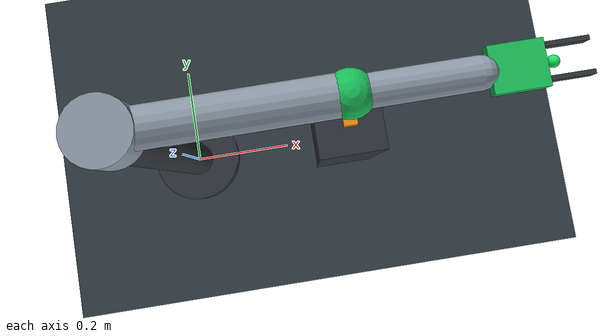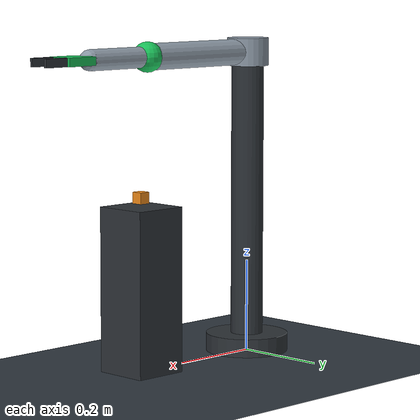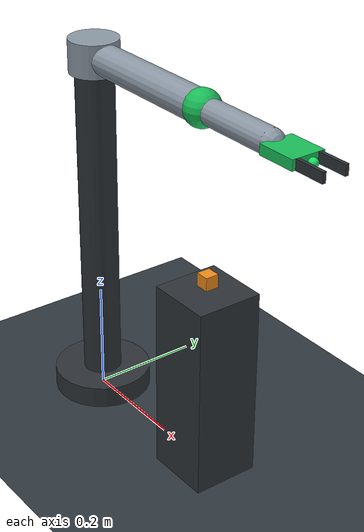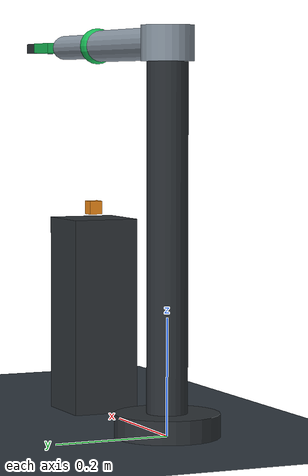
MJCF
<mujoco model="wasabi_mk1">
  <compiler angle="radian" autolimits="true"/>

  <option timestep="0.002" gravity="0 0 -9.81" integrator="implicitfast"
          cone="elliptic" impratio="10"/>

  <visual>
    <headlight ambient="0.3 0.3 0.3" diffuse="0.7 0.7 0.7"/>
    <global azimuth="160" elevation="-20"/>
  </visual>

  <asset>
    <texture type="skybox" builtin="gradient" rgb1="0.25 0.35 0.45" rgb2="0.05 0.07 0.10" width="256" height="256"/>
    <texture name="grid" type="2d" builtin="checker" rgb1="0.15 0.18 0.20" rgb2="0.22 0.26 0.30" width="300" height="300"/>
    <material name="grid" texture="grid" texrepeat="6 6" reflectance="0.1"/>
    <material name="metal" rgba="0.55 0.60 0.65 1" reflectance="0.3"/>
    <material name="accent" rgba="0.10 0.75 0.35 1"/>
    <material name="dark" rgba="0.18 0.20 0.22 1"/>
    <material name="cube" rgba="0.95 0.55 0.10 1"/>
  </asset>

  <worldbody>
    <light pos="1 -1 2.5" dir="-1 1 -2.5" diffuse="0.8 0.8 0.8"/>
    <geom name="floor" type="plane" size="2 2 0.05" material="grid"/>

    <!-- Red sphere = raw IK target. The gripper tip chasing it makes
         tracking precision directly visible. -->
    <body name="target" mocap="true" pos="0.40 0 0.66">
      <geom type="sphere" size="0.012" rgba="1 0.25 0.2 0.8" contype="0" conaffinity="0"/>
    </body>

    <!-- Pickup stand + free cube, placed well inside the reachable workspace. -->
    <geom name="stand" type="box" pos="0.32 0 0.175" size="0.06 0.06 0.175" material="dark"/>
    <body name="cube" pos="0.32 0 0.369">
      <freejoint name="cube_free"/>
      <geom name="cube" type="box" size="0.012 0.012 0.012" material="cube"
            friction="1.0 0.02 0.001" condim="4"/>
    </body>

    <body name="pedestal" pos="0 0 0">
      <geom type="cylinder" size="0.09 0.02" pos="0 0 0.02" material="dark" contype="0" conaffinity="0"/>
      <geom type="cylinder" size="0.035 0.305" pos="0 0 0.345" material="dark" contype="0" conaffinity="0"/>

      <body name="shoulder_yaw" pos="0 0 0.66">
        <joint name="base_yaw" axis="0 0 1" range="-2.094 2.094" damping="5" armature="0.1"/>
        <geom type="cylinder" size="0.045 0.03" material="metal" contype="0" conaffinity="0"/>

        <body name="upper_arm">
          <joint name="shoulder_pitch" axis="0 -1 0" range="-1.658 1.658" damping="5" armature="0.1"/>
          <geom type="capsule" fromto="0 0 0  0.30 0 0" size="0.028" material="metal" contype="0" conaffinity="0"/>

          <body name="forearm" pos="0.30 0 0">
            <joint name="elbow" axis="0 -1 0" range="0 2.618" damping="4" armature="0.08"/>
            <geom type="sphere" size="0.032" material="accent" contype="0" conaffinity="0"/>
            <geom type="capsule" fromto="0 0 0  0.16 0 0" size="0.022" material="metal" contype="0" conaffinity="0"/>

            <body name="wrist" pos="0.16 0 0">
              <joint name="wrist_roll" axis="1 0 0" range="-3.1416 3.1416" damping="1.5" armature="0.03"/>
              <geom type="box" pos="0.045 0 0" size="0.035 0.030 0.009" material="accent" contype="0" conaffinity="0"/>
              <site name="ee" pos="0.09 0 0" size="0.008" rgba="0.1 0.9 0.4 1"/>

              <body name="finger_l" pos="0.08 0.026 0">
                <joint name="finger_l" axis="0 0 -1" range="0 0.7" damping="0.3" armature="0.01"/>
                <geom type="box" pos="0.0275 -0.005 0" size="0.0275 0.003 0.009"
                      material="dark" friction="2.0 0.05 0.002" condim="4"
                      contype="2" conaffinity="1"/>
              </body>
              <body name="finger_r" pos="0.08 -0.026 0">
                <joint name="finger_r" axis="0 0 1" range="0 0.7" damping="0.3" armature="0.01"/>
                <geom type="box" pos="0.0275 0.005 0" size="0.0275 0.003 0.009"
                      material="dark" friction="2.0 0.05 0.002" condim="4"
                      contype="2" conaffinity="1"/>
              </body>
            </body>
          </body>
        </body>
      </body>
    </body>
  </worldbody>

  <actuator>
    <position name="base_yaw"      joint="base_yaw"      kp="300" kv="15"  ctrlrange="-2.094 2.094"/>
    <position name="shoulder_pitch" joint="shoulder_pitch" kp="300" kv="15"  ctrlrange="-1.658 1.658"/>
    <position name="elbow"         joint="elbow"         kp="200" kv="10"  ctrlrange="0 2.618"/>
    <position name="wrist_roll"    joint="wrist_roll"    kp="60"  kv="3"   ctrlrange="-3.1416 3.1416"/>
    <position name="finger_l"      joint="finger_l"      kp="25"  kv="0.5" forcerange="-2 2" ctrlrange="0 0.7"/>
    <position name="finger_r"      joint="finger_r"      kp="25"  kv="0.5" forcerange="-2 2" ctrlrange="0 0.7"/>
  </actuator>

  <keyframe>
    <!-- qpos order: cube free joint (xyz quat) first, then the 6 arm joints. -->
    <key name="home"
         qpos="0.32 0 0.369 1 0 0 0  0 0.5 0.9 0 0 0"
         ctrl="0 0.5 0.9 0 0 0"/>
  </keyframe>
</mujoco>
